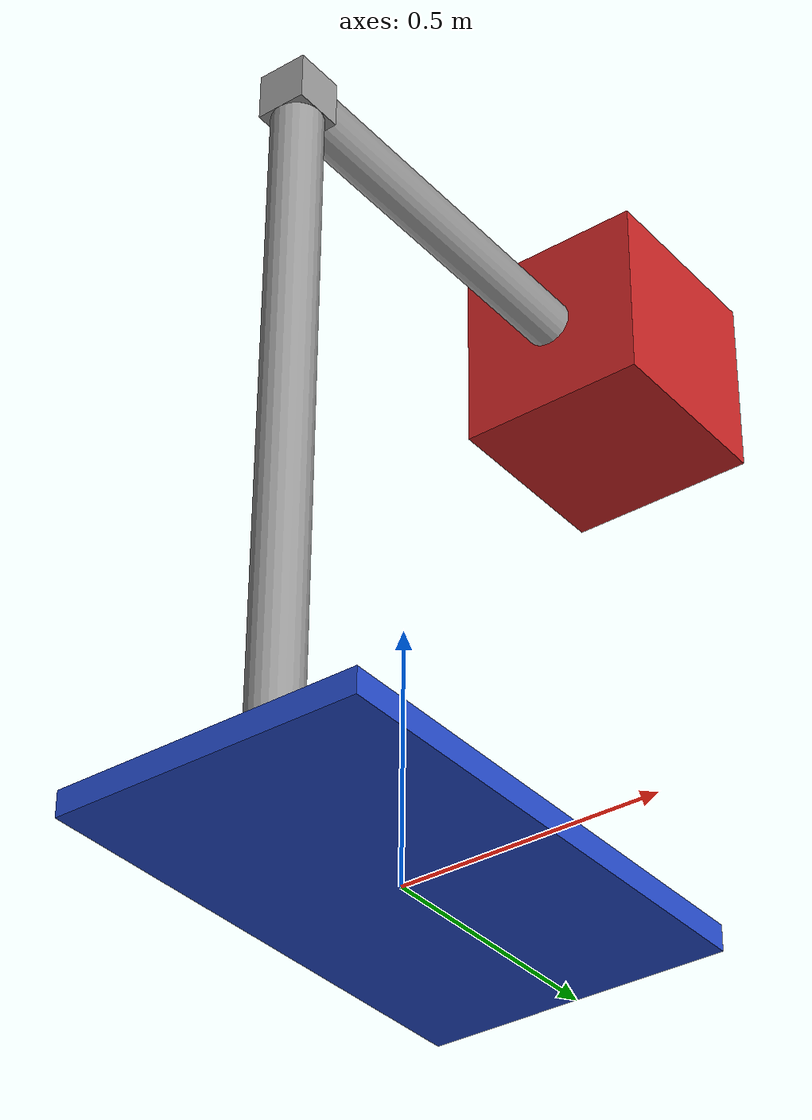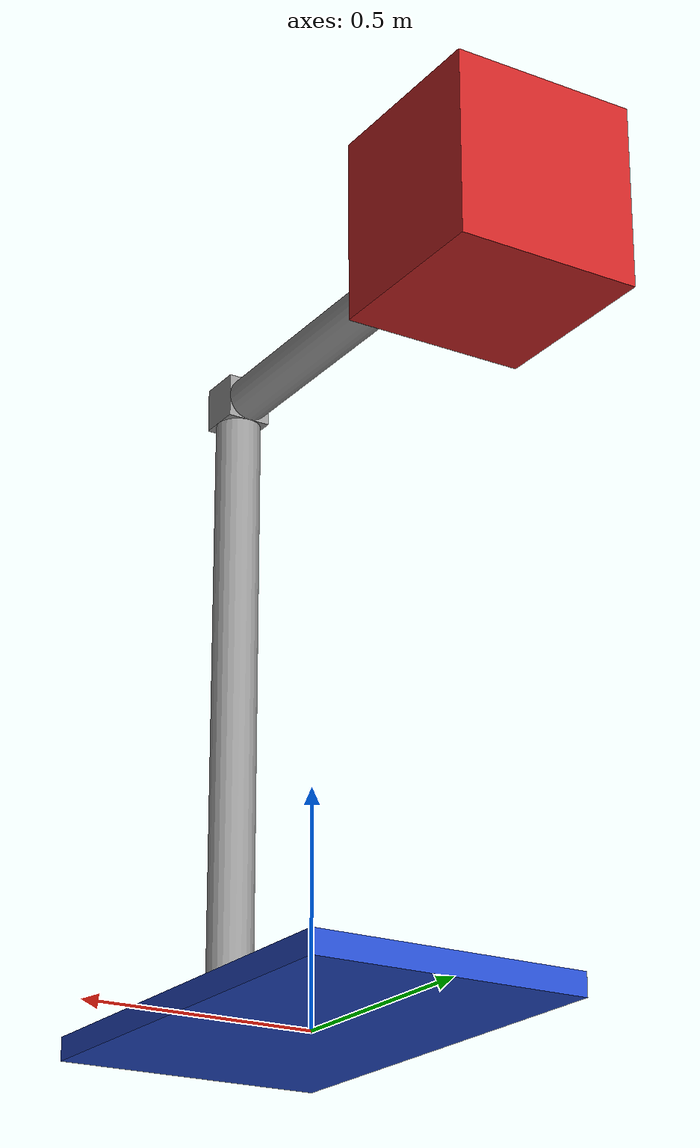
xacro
<?xml version="1.0"?>
<robot xmlns:xacro="http://www.ros.org/wiki/xacro">
    <xacro:include filename="common_properties1.xacro"/>
    <xacro:property name="base_length" value="0.6"/>
    <xacro:property name="base_width" value="1"/>
    <xacro:property name="base_height" value="0.05"/>

    <xacro:property name="neck_radius" value="0.05"/>
    <xacro:property name="neck_length" value="1.4"/>

    <xacro:property name="elbow_size" value="0.1"/>

    <xacro:property name="arm_radius" value="0.05"/>
    <xacro:property name="arm_length" value="0.75"/>

    <xacro:property name="head_size" value="0.4"/>

    <link name="base_footprint"/>

    <joint name="footprint_base_joint" type="fixed">
        <parent link="base_footprint"/>
        <child link="camera_base"/>
        <origin xyz="0 0 0" rpy="0 0 0" />
    </joint>

    <link name="camera_base">
        <visual>
            <geometry>
                <box size="${base_length} ${base_width} ${base_height}" />
            </geometry>
            <origin xyz="0 0 ${base_height/2}" rpy="0 0 0" />
            <material name="blue" />
        </visual>
        <collision>
            <geometry>
                <box size="${base_length} ${base_width} ${base_height}" />
            </geometry>
            <origin xyz="0 0 ${base_height/2}" rpy="0 0 0" />
        </collision>
        <xacro:box_inertia m="5" l="${base_length}" w="${base_width}" h="${base_height}"
                           xyz="0 0 ${base_height/2}" rpy="0 0 0" />
    </link>

     <joint name="base_neck_joint" type="fixed">
        <parent link="camera_base" />
        <child link="camera_neck" />
        <origin xyz="0 ${-base_width/3} ${base_height}" rpy="0 0 0"/>
    </joint>

    <link name="camera_neck">
        <visual>
            <geometry>
                <cylinder radius="${neck_radius}" length="${neck_length}" />
            </geometry>
            <origin xyz="0 0 ${neck_length/2}" rpy="0 0 0" />
            <material name="grey" />
        </visual>
        <collision>
            <geometry>
                <cylinder radius="${neck_radius}" length="${neck_length}" />
            </geometry>
            <origin xyz="0 0 ${neck_length/2}" rpy="0 0 0" />
        </collision>
        <xacro:cylinder_inertia m="0.5" r="${neck_radius}" h="${neck_length}"
                                xyz="0 0 ${neck_length/2}" rpy="0 0 0" />
    </link>

    <joint name="neck_elbow_joint" type="fixed">
        <parent link="camera_neck" />
        <child link="camera_elbow" />
        <origin xyz="0 0 ${neck_length+(elbow_size/2)}" rpy="0 0 0"/>
    </joint>

    <link name="camera_elbow">
        <visual>
            <geometry>
                <box size="${elbow_size} ${elbow_size} ${elbow_size}" />
            </geometry>
            <origin xyz="0 0 0" rpy="0 0 0" />
            <material name="grey" />
        </visual>
        <collision>
            <geometry>
                <box size="${elbow_size} ${elbow_size} ${elbow_size}" />
            </geometry>
            <origin xyz="0 0 0" rpy="0 0 0" />
        </collision>
        <xacro:box_inertia m="10" l="${elbow_size}" w="${elbow_size}" h="${elbow_size}"
                           xyz="0 0 0" rpy="0 0 0"/>
    </link>

    <joint name="elbow_arm_joint" type="fixed">
        <parent link="camera_elbow" />
        <child link="camera_arm" />
        <origin xyz="0 ${arm_radius} 0" rpy="0 0 0"/>
    </joint>

    <link name="camera_arm">
        <visual>
            <geometry>
                <cylinder radius="${arm_radius}" length="${arm_length}" />
            </geometry>
            <origin xyz="0 ${arm_length/2} 0" rpy="${pi/2.0} 0 0" />
            <material name="grey" />
        </visual>
        <collision>
            <geometry>
                <cylinder radius="${arm_radius}" length="${arm_length}" />
            </geometry>
            <origin xyz="0 ${arm_length/2} 0" rpy="${pi/2.0} 0 0" />
        </collision>
        <xacro:cylinder_inertia m="2.0" r="${arm_radius}" h="${arm_length}"
                                xyz="0 ${arm_length/2} 0" rpy="${pi/2.0} 0 0"  />
    </link>

    <joint name="arm_head_joint" type="fixed">
        <parent link="camera_arm" />
        <child link="camera_head" />
        <origin xyz="0 ${arm_length} 0" rpy="0 0 0"/>
    </joint>

    <link name="camera_head">
        <visual>
            <geometry>
                <box size="${head_size} ${head_size} ${head_size}"/>
            </geometry>
            <origin xyz="0 ${head_size/2} 0" rpy="0 0 0" />
            <material name="red" />
        </visual>
        <collision>
            <geometry>
                <box size="${head_size} ${head_size} ${head_size}"/>
            </geometry>
            <origin xyz="0 ${head_size/2} 0" rpy="0 0 0" />
        </collision>
        <xacro:box_inertia m="1" l="${head_size}" w="${head_size}" h="${head_size}"
                           xyz="0 ${head_size/2} 0" rpy="0 0 0"/>
    </link>

</robot>

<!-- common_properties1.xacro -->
<robot xmlns:xacro="http://www.ros.org/wiki/xacro">

    <xacro:macro name="box_inertia" params="m l w h xyz rpy">
        <inertial>
            <origin xyz="${xyz}" rpy="${rpy}" />
            <mass value="${m}" />
            <inertia ixx="${(m/12) * (h*h + l*l)}" ixy="0" ixz="0"
                     iyy="${(m/12) * (w*w + l*l)}" iyz="0"
                     izz="${(m/12) * (w*w + h*h)}" />
        </inertial>
    </xacro:macro>

    <xacro:macro name="cylinder_inertia" params="m r h xyz rpy">
        <inertial>
            <origin xyz="${xyz}" rpy="${rpy}" />
            <mass value="${m}" />
            <inertia ixx="${(m/12) * (3*r*r + h*h)}" ixy="0" ixz="0"
                     iyy="${(m/12) * (3*r*r + h*h)}" iyz="0"
                     izz="${(m/2) * (r*r)}" />
        </inertial>
    </xacro:macro>

    <xacro:macro name="sphere_inertia" params="m r xyz rpy">
        <inertial>
            <origin xyz="${xyz}" rpy="${rpy}" />
            <mass value="${m}" />
            <inertia ixx="${(2/5) * m * r * r}" ixy="0" ixz="0"
                     iyy="${(2/5) * m * r * r}" iyz="0"
                     izz="${(2/5) * m * r * r}" />
        </inertial>
    </xacro:macro>

</robot>
